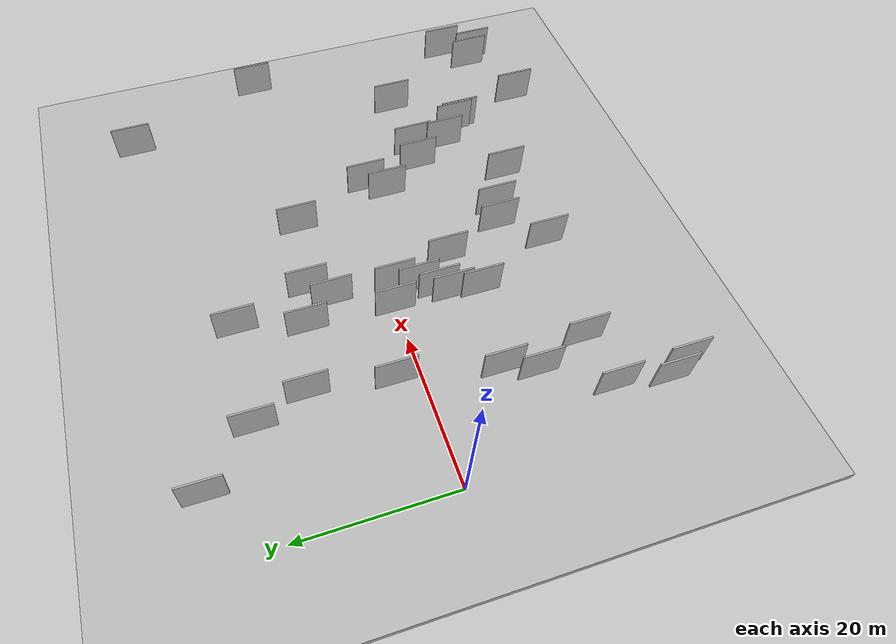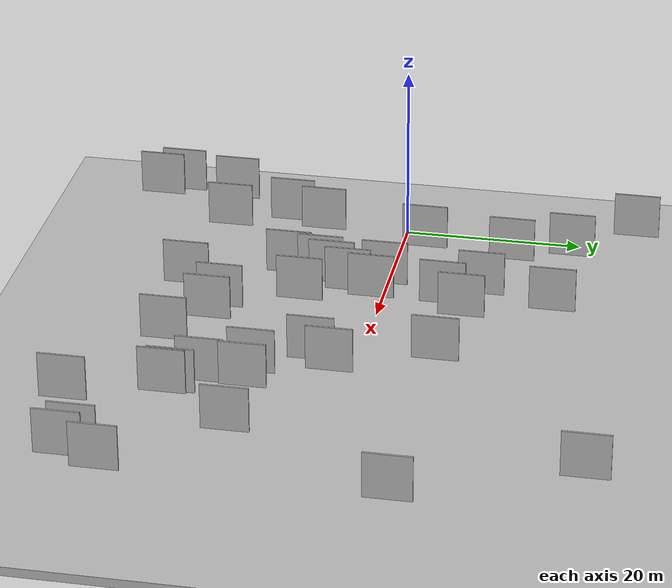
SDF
<?xml version="1.0" encoding="utf-8"?>

<sdf version="1.6">

   <world name="default">

      <gui fullscreen="0">

         <camera name="user_camera">

            <pose>-15 0 4.57585 0 0 0</pose>

            <view_controller>orbit</view_controller>

         </camera>

      </gui>

      <scene>

         <sky>

           <clouds>

             <speed>12</speed>

           </clouds>

         </sky>

         <ambient>0.4 0.4 0.4 1</ambient>

         <background>0.7 0.7 0.7 1</background>

         <shadows>1</shadows>

      </scene>

      <gravity>0 0 -9.8066</gravity>

      <magnetic_field>6e-06 2.3e-05 -4.2e-05</magnetic_field>

      <physics default="0" name="default_physics" type="ode">

         <ode>

            <solver>

               <type>quick</type>

               <iters>10</iters>

               <sor>1.0</sor>

               <use_dynamic_moi_rescaling>0</use_dynamic_moi_rescaling>

            </solver>

            <constraints>

               <cfm>0</cfm>

               <erp>0.2</erp>

               <contact_max_correcting_vel>100</contact_max_correcting_vel>

               <contact_surface_layer>0.001</contact_surface_layer>

            </constraints>

         </ode>

         <max_step_size>0.004</max_step_size>

         <real_time_factor>1</real_time_factor>

         <real_time_update_rate>250</real_time_update_rate>

      </physics>

      <light name="sun" type="directional">

         <cast_shadows>1</cast_shadows>

         <pose>0 0 10 0 0 0</pose>

         <diffuse>0.8 0.8 0.8 1</diffuse>

         <specular>0.2 0.2 0.2 1</specular>

         <attenuation>

            <range>1000</range>

            <constant>0.9</constant>

            <linear>0.01</linear>

            <quadratic>0.001</quadratic>

         </attenuation>

         <direction>-0.5 0.1 -0.9</direction>

      </light>

      <include>

         <name>ground_plane_1</name>

         <uri>model://HANNAS_ground_plane</uri>

         <pose>0 0 0  0 0 0</pose>

      </include>

      <include>

         <name>ground_plane_2</name>

         <uri>model://HANNAS_ground_plane</uri>

         <pose>100 0 0  0 0 0</pose>

      </include>

      <model name="HANNAS_wall_1">

         <static>1</static>

         <pose frame="">45.8689 -9.1494 5.0 0.000000 0.000000 1.570796</pose>

         <link name="link">

            <pose frame="">0 0 2.50 0 0 0</pose>

            <collision name="collision">

               <geometry>

                  <box>

                     <size>5.00 0.2 5.00</size>

                  </box>

               </geometry>

               <max_contacts>10</max_contacts>

               <surface>

                  <contact>

                     <ode/>

                  </contact>

                  <bounce/>

                  <friction>

                     <torsional>

                        <ode/>

                     </torsional>

                     <ode/>

                  </friction>

               </surface>

            </collision>

            <visual name="visual">

               <cast_shadows>0</cast_shadows>

               <geometry>

                  <box>

                     <size>5.00 0.2 5.00</size>

                  </box>

               </geometry>

               <material>

                  <script>

                     <uri>model://HANNAS_wall/materials/scripts</uri>

                     <uri>model://HANNAS_wall/materials/textures</uri>

                     <name>vrc/HANNAS_wall</name>

                  </script>

               </material>

            </visual>

            <self_collide>0</self_collide>

            <enable_wind>0</enable_wind>

            <kinematic>0</kinematic>

         </link>

      </model>

      <model name="HANNAS_wall_2">

         <static>1</static>

         <pose frame="">24.1546 19.8000 5.0 0.000000 0.000000 1.570796</pose>

         <link name="link">

            <pose frame="">0 0 2.50 0 0 0</pose>

            <collision name="collision">

               <geometry>

                  <box>

                     <size>5.00 0.2 5.00</size>

                  </box>

               </geometry>

               <max_contacts>10</max_contacts>

               <surface>

                  <contact>

                     <ode/>

                  </contact>

                  <bounce/>

                  <friction>

                     <torsional>

                        <ode/>

                     </torsional>

                     <ode/>

                  </friction>

               </surface>

            </collision>

            <visual name="visual">

               <cast_shadows>0</cast_shadows>

               <geometry>

                  <box>

                     <size>5.00 0.2 5.00</size>

                  </box>

               </geometry>

               <material>

                  <script>

                     <uri>model://HANNAS_wall/materials/scripts</uri>

                     <uri>model://HANNAS_wall/materials/textures</uri>

                     <name>vrc/HANNAS_wall</name>

                  </script>

               </material>

            </visual>

            <self_collide>0</self_collide>

            <enable_wind>0</enable_wind>

            <kinematic>0</kinematic>

         </link>

      </model>

      <model name="HANNAS_wall_3">

         <static>1</static>

         <pose frame="">41.1265 -1.0833 5.0 0.000000 0.000000 1.570796</pose>

         <link name="link">

            <pose frame="">0 0 2.50 0 0 0</pose>

            <collision name="collision">

               <geometry>

                  <box>

                     <size>5.00 0.2 5.00</size>

                  </box>

               </geometry>

               <max_contacts>10</max_contacts>

               <surface>

                  <contact>

                     <ode/>

                  </contact>

                  <bounce/>

                  <friction>

                     <torsional>

                        <ode/>

                     </torsional>

                     <ode/>

                  </friction>

               </surface>

            </collision>

            <visual name="visual">

               <cast_shadows>0</cast_shadows>

               <geometry>

                  <box>

                     <size>5.00 0.2 5.00</size>

                  </box>

               </geometry>

               <material>

                  <script>

                     <uri>model://HANNAS_wall/materials/scripts</uri>

                     <uri>model://HANNAS_wall/materials/textures</uri>

                     <name>vrc/HANNAS_wall</name>

                  </script>

               </material>

            </visual>

            <self_collide>0</self_collide>

            <enable_wind>0</enable_wind>

            <kinematic>0</kinematic>

         </link>

      </model>

      <model name="HANNAS_wall_4">

         <static>1</static>

         <pose frame="">45.6320 -13.7155 5.0 0.000000 0.000000 1.570796</pose>

         <link name="link">

            <pose frame="">0 0 2.50 0 0 0</pose>

            <collision name="collision">

               <geometry>

                  <box>

                     <size>5.00 0.2 5.00</size>

                  </box>

               </geometry>

               <max_contacts>10</max_contacts>

               <surface>

                  <contact>

                     <ode/>

                  </contact>

                  <bounce/>

                  <friction>

                     <torsional>

                        <ode/>

                     </torsional>

                     <ode/>

                  </friction>

               </surface>

            </collision>

            <visual name="visual">

               <cast_shadows>0</cast_shadows>

               <geometry>

                  <box>

                     <size>5.00 0.2 5.00</size>

                  </box>

               </geometry>

               <material>

                  <script>

                     <uri>model://HANNAS_wall/materials/scripts</uri>

                     <uri>model://HANNAS_wall/materials/textures</uri>

                     <name>vrc/HANNAS_wall</name>

                  </script>

               </material>

            </visual>

            <self_collide>0</self_collide>

            <enable_wind>0</enable_wind>

            <kinematic>0</kinematic>

         </link>

      </model>

      <model name="HANNAS_wall_5">

         <static>1</static>

         <pose frame="">9.9826 -7.8186 5.0 0.000000 0.000000 1.570796</pose>

         <link name="link">

            <pose frame="">0 0 2.50 0 0 0</pose>

            <collision name="collision">

               <geometry>

                  <box>

                     <size>5.00 0.2 5.00</size>

                  </box>

               </geometry>

               <max_contacts>10</max_contacts>

               <surface>

                  <contact>

                     <ode/>

                  </contact>

                  <bounce/>

                  <friction>

                     <torsional>

                        <ode/>

                     </torsional>

                     <ode/>

                  </friction>

               </surface>

            </collision>

            <visual name="visual">

               <cast_shadows>0</cast_shadows>

               <geometry>

                  <box>

                     <size>5.00 0.2 5.00</size>

                  </box>

               </geometry>

               <material>

                  <script>

                     <uri>model://HANNAS_wall/materials/scripts</uri>

                     <uri>model://HANNAS_wall/materials/textures</uri>

                     <name>vrc/HANNAS_wall</name>

                  </script>

               </material>

            </visual>

            <self_collide>0</self_collide>

            <enable_wind>0</enable_wind>

            <kinematic>0</kinematic>

         </link>

      </model>

      <model name="HANNAS_wall_6">

         <static>1</static>

         <pose frame="">37.7334 -19.4308 5.0 0.000000 0.000000 1.570796</pose>

         <link name="link">

            <pose frame="">0 0 2.50 0 0 0</pose>

            <collision name="collision">

               <geometry>

                  <box>

                     <size>5.00 0.2 5.00</size>

                  </box>

               </geometry>

               <max_contacts>10</max_contacts>

               <surface>

                  <contact>

                     <ode/>

                  </contact>

                  <bounce/>

                  <friction>

                     <torsional>

                        <ode/>

                     </torsional>

                     <ode/>

                  </friction>

               </surface>

            </collision>

            <visual name="visual">

               <cast_shadows>0</cast_shadows>

               <geometry>

                  <box>

                     <size>5.00 0.2 5.00</size>

                  </box>

               </geometry>

               <material>

                  <script>

                     <uri>model://HANNAS_wall/materials/scripts</uri>

                     <uri>model://HANNAS_wall/materials/textures</uri>

                     <name>vrc/HANNAS_wall</name>

                  </script>

               </material>

            </visual>

            <self_collide>0</self_collide>

            <enable_wind>0</enable_wind>

            <kinematic>0</kinematic>

         </link>

      </model>

      <model name="HANNAS_wall_7">

         <static>1</static>

         <pose frame="">11.3597 20.3372 5.0 0.000000 0.000000 1.570796</pose>

         <link name="link">

            <pose frame="">0 0 2.50 0 0 0</pose>

            <collision name="collision">

               <geometry>

                  <box>

                     <size>5.00 0.2 5.00</size>

                  </box>

               </geometry>

               <max_contacts>10</max_contacts>

               <surface>

                  <contact>

                     <ode/>

                  </contact>

                  <bounce/>

                  <friction>

                     <torsional>

                        <ode/>

                     </torsional>

                     <ode/>

                  </friction>

               </surface>

            </collision>

            <visual name="visual">

               <cast_shadows>0</cast_shadows>

               <geometry>

                  <box>

                     <size>5.00 0.2 5.00</size>

                  </box>

               </geometry>

               <material>

                  <script>

                     <uri>model://HANNAS_wall/materials/scripts</uri>

                     <uri>model://HANNAS_wall/materials/textures</uri>

                     <name>vrc/HANNAS_wall</name>

                  </script>

               </material>

            </visual>

            <self_collide>0</self_collide>

            <enable_wind>0</enable_wind>

            <kinematic>0</kinematic>

         </link>

      </model>

      <model name="HANNAS_wall_8">

         <static>1</static>

         <pose frame="">20.9005 -9.5309 5.0 0.000000 0.000000 1.570796</pose>

         <link name="link">

            <pose frame="">0 0 2.50 0 0 0</pose>

            <collision name="collision">

               <geometry>

                  <box>

                     <size>5.00 0.2 5.00</size>

                  </box>

               </geometry>

               <max_contacts>10</max_contacts>

               <surface>

                  <contact>

                     <ode/>

                  </contact>

                  <bounce/>

                  <friction>

                     <torsional>

                        <ode/>

                     </torsional>

                     <ode/>

                  </friction>

               </surface>

            </collision>

            <visual name="visual">

               <cast_shadows>0</cast_shadows>

               <geometry>

                  <box>

                     <size>5.00 0.2 5.00</size>

                  </box>

               </geometry>

               <material>

                  <script>

                     <uri>model://HANNAS_wall/materials/scripts</uri>

                     <uri>model://HANNAS_wall/materials/textures</uri>

                     <name>vrc/HANNAS_wall</name>

                  </script>

               </material>

            </visual>

            <self_collide>0</self_collide>

            <enable_wind>0</enable_wind>

            <kinematic>0</kinematic>

         </link>

      </model>

      <model name="HANNAS_wall_9">

         <static>1</static>

         <pose frame="">21.9039 11.8177 5.0 0.000000 0.000000 1.570796</pose>

         <link name="link">

            <pose frame="">0 0 2.50 0 0 0</pose>

            <collision name="collision">

               <geometry>

                  <box>

                     <size>5.00 0.2 5.00</size>

                  </box>

               </geometry>

               <max_contacts>10</max_contacts>

               <surface>

                  <contact>

                     <ode/>

                  </contact>

                  <bounce/>

                  <friction>

                     <torsional>

                        <ode/>

                     </torsional>

                     <ode/>

                  </friction>

               </surface>

            </collision>

            <visual name="visual">

               <cast_shadows>0</cast_shadows>

               <geometry>

                  <box>

                     <size>5.00 0.2 5.00</size>

                  </box>

               </geometry>

               <material>

                  <script>

                     <uri>model://HANNAS_wall/materials/scripts</uri>

                     <uri>model://HANNAS_wall/materials/textures</uri>

                     <name>vrc/HANNAS_wall</name>

                  </script>

               </material>

            </visual>

            <self_collide>0</self_collide>

            <enable_wind>0</enable_wind>

            <kinematic>0</kinematic>

         </link>

      </model>

      <model name="HANNAS_wall_10">

         <static>1</static>

         <pose frame="">4.6481 -27.6970 5.0 0.000000 0.000000 1.570796</pose>

         <link name="link">

            <pose frame="">0 0 2.50 0 0 0</pose>

            <collision name="collision">

               <geometry>

                  <box>

                     <size>5.00 0.2 5.00</size>

                  </box>

               </geometry>

               <max_contacts>10</max_contacts>

               <surface>

                  <contact>

                     <ode/>

                  </contact>

                  <bounce/>

                  <friction>

                     <torsional>

                        <ode/>

                     </torsional>

                     <ode/>

                  </friction>

               </surface>

            </collision>

            <visual name="visual">

               <cast_shadows>0</cast_shadows>

               <geometry>

                  <box>

                     <size>5.00 0.2 5.00</size>

                  </box>

               </geometry>

               <material>

                  <script>

                     <uri>model://HANNAS_wall/materials/scripts</uri>

                     <uri>model://HANNAS_wall/materials/textures</uri>

                     <name>vrc/HANNAS_wall</name>

                  </script>

               </material>

            </visual>

            <self_collide>0</self_collide>

            <enable_wind>0</enable_wind>

            <kinematic>0</kinematic>

         </link>

      </model>

      <model name="HANNAS_wall_11">

         <static>1</static>

         <pose frame="">8.5023 -11.6811 5.0 0.000000 0.000000 1.570796</pose>

         <link name="link">

            <pose frame="">0 0 2.50 0 0 0</pose>

            <collision name="collision">

               <geometry>

                  <box>

                     <size>5.00 0.2 5.00</size>

                  </box>

               </geometry>

               <max_contacts>10</max_contacts>

               <surface>

                  <contact>

                     <ode/>

                  </contact>

                  <bounce/>

                  <friction>

                     <torsional>

                        <ode/>

                     </torsional>

                     <ode/>

                  </friction>

               </surface>

            </collision>

            <visual name="visual">

               <cast_shadows>0</cast_shadows>

               <geometry>

                  <box>

                     <size>5.00 0.2 5.00</size>

                  </box>

               </geometry>

               <material>

                  <script>

                     <uri>model://HANNAS_wall/materials/scripts</uri>

                     <uri>model://HANNAS_wall/materials/textures</uri>

                     <name>vrc/HANNAS_wall</name>

                  </script>

               </material>

            </visual>

            <self_collide>0</self_collide>

            <enable_wind>0</enable_wind>

            <kinematic>0</kinematic>

         </link>

      </model>

      <model name="HANNAS_wall_12">

         <static>1</static>

         <pose frame="">60.6085 -23.0088 5.0 0.000000 0.000000 1.570796</pose>

         <link name="link">

            <pose frame="">0 0 2.50 0 0 0</pose>

            <collision name="collision">

               <geometry>

                  <box>

                     <size>5.00 0.2 5.00</size>

                  </box>

               </geometry>

               <max_contacts>10</max_contacts>

               <surface>

                  <contact>

                     <ode/>

                  </contact>

                  <bounce/>

                  <friction>

                     <torsional>

                        <ode/>

                     </torsional>

                     <ode/>

                  </friction>

               </surface>

            </collision>

            <visual name="visual">

               <cast_shadows>0</cast_shadows>

               <geometry>

                  <box>

                     <size>5.00 0.2 5.00</size>

                  </box>

               </geometry>

               <material>

                  <script>

                     <uri>model://HANNAS_wall/materials/scripts</uri>

                     <uri>model://HANNAS_wall/materials/textures</uri>

                     <name>vrc/HANNAS_wall</name>

                  </script>

               </material>

            </visual>

            <self_collide>0</self_collide>

            <enable_wind>0</enable_wind>

            <kinematic>0</kinematic>

         </link>

      </model>

      <model name="HANNAS_wall_13">

         <static>1</static>

         <pose frame="">63.9735 -19.9130 5.0 0.000000 0.000000 1.570796</pose>

         <link name="link">

            <pose frame="">0 0 2.50 0 0 0</pose>

            <collision name="collision">

               <geometry>

                  <box>

                     <size>5.00 0.2 5.00</size>

                  </box>

               </geometry>

               <max_contacts>10</max_contacts>

               <surface>

                  <contact>

                     <ode/>

                  </contact>

                  <bounce/>

                  <friction>

                     <torsional>

                        <ode/>

                     </torsional>

                     <ode/>

                  </friction>

               </surface>

            </collision>

            <visual name="visual">

               <cast_shadows>0</cast_shadows>

               <geometry>

                  <box>

                     <size>5.00 0.2 5.00</size>

                  </box>

               </geometry>

               <material>

                  <script>

                     <uri>model://HANNAS_wall/materials/scripts</uri>

                     <uri>model://HANNAS_wall/materials/textures</uri>

                     <name>vrc/HANNAS_wall</name>

                  </script>

               </material>

            </visual>

            <self_collide>0</self_collide>

            <enable_wind>0</enable_wind>

            <kinematic>0</kinematic>

         </link>

      </model>

      <model name="HANNAS_wall_14">

         <static>1</static>

         <pose frame="">48.2057 -16.0834 5.0 0.000000 0.000000 1.570796</pose>

         <link name="link">

            <pose frame="">0 0 2.50 0 0 0</pose>

            <collision name="collision">

               <geometry>

                  <box>

                     <size>5.00 0.2 5.00</size>

                  </box>

               </geometry>

               <max_contacts>10</max_contacts>

               <surface>

                  <contact>

                     <ode/>

                  </contact>

                  <bounce/>

                  <friction>

                     <torsional>

                        <ode/>

                     </torsional>

                     <ode/>

                  </friction>

               </surface>

            </collision>

            <visual name="visual">

               <cast_shadows>0</cast_shadows>

               <geometry>

                  <box>

                     <size>5.00 0.2 5.00</size>

                  </box>

               </geometry>

               <material>

                  <script>

                     <uri>model://HANNAS_wall/materials/scripts</uri>

                     <uri>model://HANNAS_wall/materials/textures</uri>

                     <name>vrc/HANNAS_wall</name>

                  </script>

               </material>

            </visual>

            <self_collide>0</self_collide>

            <enable_wind>0</enable_wind>

            <kinematic>0</kinematic>

         </link>

      </model>

      <model name="HANNAS_wall_15">

         <static>1</static>

         <pose frame="">24.7126 0.2399 5.0 0.000000 0.000000 1.570796</pose>

         <link name="link">

            <pose frame="">0 0 2.50 0 0 0</pose>

            <collision name="collision">

               <geometry>

                  <box>

                     <size>5.00 0.2 5.00</size>

                  </box>

               </geometry>

               <max_contacts>10</max_contacts>

               <surface>

                  <contact>

                     <ode/>

                  </contact>

                  <bounce/>

                  <friction>

                     <torsional>

                        <ode/>

                     </torsional>

                     <ode/>

                  </friction>

               </surface>

            </collision>

            <visual name="visual">

               <cast_shadows>0</cast_shadows>

               <geometry>

                  <box>

                     <size>5.00 0.2 5.00</size>

                  </box>

               </geometry>

               <material>

                  <script>

                     <uri>model://HANNAS_wall/materials/scripts</uri>

                     <uri>model://HANNAS_wall/materials/textures</uri>

                     <name>vrc/HANNAS_wall</name>

                  </script>

               </material>

            </visual>

            <self_collide>0</self_collide>

            <enable_wind>0</enable_wind>

            <kinematic>0</kinematic>

         </link>

      </model>

      <model name="HANNAS_wall_16">

         <static>1</static>

         <pose frame="">3.2623 -25.4595 5.0 0.000000 0.000000 1.570796</pose>

         <link name="link">

            <pose frame="">0 0 2.50 0 0 0</pose>

            <collision name="collision">

               <geometry>

                  <box>

                     <size>5.00 0.2 5.00</size>

                  </box>

               </geometry>

               <max_contacts>10</max_contacts>

               <surface>

                  <contact>

                     <ode/>

                  </contact>

                  <bounce/>

                  <friction>

                     <torsional>

                        <ode/>

                     </torsional>

                     <ode/>

                  </friction>

               </surface>

            </collision>

            <visual name="visual">

               <cast_shadows>0</cast_shadows>

               <geometry>

                  <box>

                     <size>5.00 0.2 5.00</size>

                  </box>

               </geometry>

               <material>

                  <script>

                     <uri>model://HANNAS_wall/materials/scripts</uri>

                     <uri>model://HANNAS_wall/materials/textures</uri>

                     <name>vrc/HANNAS_wall</name>

                  </script>

               </material>

            </visual>

            <self_collide>0</self_collide>

            <enable_wind>0</enable_wind>

            <kinematic>0</kinematic>

         </link>

      </model>

      <model name="HANNAS_wall_17">

         <static>1</static>

         <pose frame="">62.1523 -24.0987 5.0 0.000000 0.000000 1.570796</pose>

         <link name="link">

            <pose frame="">0 0 2.50 0 0 0</pose>

            <collision name="collision">

               <geometry>

                  <box>

                     <size>5.00 0.2 5.00</size>

                  </box>

               </geometry>

               <max_contacts>10</max_contacts>

               <surface>

                  <contact>

                     <ode/>

                  </contact>

                  <bounce/>

                  <friction>

                     <torsional>

                        <ode/>

                     </torsional>

                     <ode/>

                  </friction>

               </surface>

            </collision>

            <visual name="visual">

               <cast_shadows>0</cast_shadows>

               <geometry>

                  <box>

                     <size>5.00 0.2 5.00</size>

                  </box>

               </geometry>

               <material>

                  <script>

                     <uri>model://HANNAS_wall/materials/scripts</uri>

                     <uri>model://HANNAS_wall/materials/textures</uri>

                     <name>vrc/HANNAS_wall</name>

                  </script>

               </material>

            </visual>

            <self_collide>0</self_collide>

            <enable_wind>0</enable_wind>

            <kinematic>0</kinematic>

         </link>

      </model>

      <model name="HANNAS_wall_18">

         <static>1</static>

         <pose frame="">42.8389 -8.9228 5.0 0.000000 0.000000 1.570796</pose>

         <link name="link">

            <pose frame="">0 0 2.50 0 0 0</pose>

            <collision name="collision">

               <geometry>

                  <box>

                     <size>5.00 0.2 5.00</size>

                  </box>

               </geometry>

               <max_contacts>10</max_contacts>

               <surface>

                  <contact>

                     <ode/>

                  </contact>

                  <bounce/>

                  <friction>

                     <torsional>

                        <ode/>

                     </torsional>

                     <ode/>

                  </friction>

               </surface>

            </collision>

            <visual name="visual">

               <cast_shadows>0</cast_shadows>

               <geometry>

                  <box>

                     <size>5.00 0.2 5.00</size>

                  </box>

               </geometry>

               <material>

                  <script>

                     <uri>model://HANNAS_wall/materials/scripts</uri>

                     <uri>model://HANNAS_wall/materials/textures</uri>

                     <name>vrc/HANNAS_wall</name>

                  </script>

               </material>

            </visual>

            <self_collide>0</self_collide>

            <enable_wind>0</enable_wind>

            <kinematic>0</kinematic>

         </link>

      </model>

      <model name="HANNAS_wall_19">

         <static>1</static>

         <pose frame="">64.2419 9.1794 5.0 0.000000 0.000000 1.570796</pose>

         <link name="link">

            <pose frame="">0 0 2.50 0 0 0</pose>

            <collision name="collision">

               <geometry>

                  <box>

                     <size>5.00 0.2 5.00</size>

                  </box>

               </geometry>

               <max_contacts>10</max_contacts>

               <surface>

                  <contact>

                     <ode/>

                  </contact>

                  <bounce/>

                  <friction>

                     <torsional>

                        <ode/>

                     </torsional>

                     <ode/>

                  </friction>

               </surface>

            </collision>

            <visual name="visual">

               <cast_shadows>0</cast_shadows>

               <geometry>

                  <box>

                     <size>5.00 0.2 5.00</size>

                  </box>

               </geometry>

               <material>

                  <script>

                     <uri>model://HANNAS_wall/materials/scripts</uri>

                     <uri>model://HANNAS_wall/materials/textures</uri>

                     <name>vrc/HANNAS_wall</name>

                  </script>

               </material>

            </visual>

            <self_collide>0</self_collide>

            <enable_wind>0</enable_wind>

            <kinematic>0</kinematic>

         </link>

      </model>

      <model name="HANNAS_wall_20">

         <static>1</static>

         <pose frame="">21.3198 -5.9582 5.0 0.000000 0.000000 1.570796</pose>

         <link name="link">

            <pose frame="">0 0 2.50 0 0 0</pose>

            <collision name="collision">

               <geometry>

                  <box>

                     <size>5.00 0.2 5.00</size>

                  </box>

               </geometry>

               <max_contacts>10</max_contacts>

               <surface>

                  <contact>

                     <ode/>

                  </contact>

                  <bounce/>

                  <friction>

                     <torsional>

                        <ode/>

                     </torsional>

                     <ode/>

                  </friction>

               </surface>

            </collision>

            <visual name="visual">

               <cast_shadows>0</cast_shadows>

               <geometry>

                  <box>

                     <size>5.00 0.2 5.00</size>

                  </box>

               </geometry>

               <material>

                  <script>

                     <uri>model://HANNAS_wall/materials/scripts</uri>

                     <uri>model://HANNAS_wall/materials/textures</uri>

                     <name>vrc/HANNAS_wall</name>

                  </script>

               </material>

            </visual>

            <self_collide>0</self_collide>

            <enable_wind>0</enable_wind>

            <kinematic>0</kinematic>

         </link>

      </model>

      <model name="HANNAS_wall_21">

         <static>1</static>

         <pose frame="">13.5142 13.9299 5.0 0.000000 0.000000 1.570796</pose>

         <link name="link">

            <pose frame="">0 0 2.50 0 0 0</pose>

            <collision name="collision">

               <geometry>

                  <box>

                     <size>5.00 0.2 5.00</size>

                  </box>

               </geometry>

               <max_contacts>10</max_contacts>

               <surface>

                  <contact>

                     <ode/>

                  </contact>

                  <bounce/>

                  <friction>

                     <torsional>

                        <ode/>

                     </torsional>

                     <ode/>

                  </friction>

               </surface>

            </collision>

            <visual name="visual">

               <cast_shadows>0</cast_shadows>

               <geometry>

                  <box>

                     <size>5.00 0.2 5.00</size>

                  </box>

               </geometry>

               <material>

                  <script>

                     <uri>model://HANNAS_wall/materials/scripts</uri>

                     <uri>model://HANNAS_wall/materials/textures</uri>

                     <name>vrc/HANNAS_wall</name>

                  </script>

               </material>

            </visual>

            <self_collide>0</self_collide>

            <enable_wind>0</enable_wind>

            <kinematic>0</kinematic>

         </link>

      </model>

      <model name="HANNAS_wall_22">

         <static>1</static>

         <pose frame="">5.4197 26.8674 5.0 0.000000 0.000000 1.570796</pose>

         <link name="link">

            <pose frame="">0 0 2.50 0 0 0</pose>

            <collision name="collision">

               <geometry>

                  <box>

                     <size>5.00 0.2 5.00</size>

                  </box>

               </geometry>

               <max_contacts>10</max_contacts>

               <surface>

                  <contact>

                     <ode/>

                  </contact>

                  <bounce/>

                  <friction>

                     <torsional>

                        <ode/>

                     </torsional>

                     <ode/>

                  </friction>

               </surface>

            </collision>

            <visual name="visual">

               <cast_shadows>0</cast_shadows>

               <geometry>

                  <box>

                     <size>5.00 0.2 5.00</size>

                  </box>

               </geometry>

               <material>

                  <script>

                     <uri>model://HANNAS_wall/materials/scripts</uri>

                     <uri>model://HANNAS_wall/materials/textures</uri>

                     <name>vrc/HANNAS_wall</name>

                  </script>

               </material>

            </visual>

            <self_collide>0</self_collide>

            <enable_wind>0</enable_wind>

            <kinematic>0</kinematic>

         </link>

      </model>

      <model name="HANNAS_wall_23">

         <static>1</static>

         <pose frame="">36.8729 9.2549 5.0 0.000000 0.000000 1.570796</pose>

         <link name="link">

            <pose frame="">0 0 2.50 0 0 0</pose>

            <collision name="collision">

               <geometry>

                  <box>

                     <size>5.00 0.2 5.00</size>

                  </box>

               </geometry>

               <max_contacts>10</max_contacts>

               <surface>

                  <contact>

                     <ode/>

                  </contact>

                  <bounce/>

                  <friction>

                     <torsional>

                        <ode/>

                     </torsional>

                     <ode/>

                  </friction>

               </surface>

            </collision>

            <visual name="visual">

               <cast_shadows>0</cast_shadows>

               <geometry>

                  <box>

                     <size>5.00 0.2 5.00</size>

                  </box>

               </geometry>

               <material>

                  <script>

                     <uri>model://HANNAS_wall/materials/scripts</uri>

                     <uri>model://HANNAS_wall/materials/textures</uri>

                     <name>vrc/HANNAS_wall</name>

                  </script>

               </material>

            </visual>

            <self_collide>0</self_collide>

            <enable_wind>0</enable_wind>

            <kinematic>0</kinematic>

         </link>

      </model>

      <model name="HANNAS_wall_24">

         <static>1</static>

         <pose frame="">39.2091 -3.4081 5.0 0.000000 0.000000 1.570796</pose>

         <link name="link">

            <pose frame="">0 0 2.50 0 0 0</pose>

            <collision name="collision">

               <geometry>

                  <box>

                     <size>5.00 0.2 5.00</size>

                  </box>

               </geometry>

               <max_contacts>10</max_contacts>

               <surface>

                  <contact>

                     <ode/>

                  </contact>

                  <bounce/>

                  <friction>

                     <torsional>

                        <ode/>

                     </torsional>

                     <ode/>

                  </friction>

               </surface>

            </collision>

            <visual name="visual">

               <cast_shadows>0</cast_shadows>

               <geometry>

                  <box>

                     <size>5.00 0.2 5.00</size>

                  </box>

               </geometry>

               <material>

                  <script>

                     <uri>model://HANNAS_wall/materials/scripts</uri>

                     <uri>model://HANNAS_wall/materials/textures</uri>

                     <name>vrc/HANNAS_wall</name>

                  </script>

               </material>

            </visual>

            <self_collide>0</self_collide>

            <enable_wind>0</enable_wind>

            <kinematic>0</kinematic>

         </link>

      </model>

      <model name="HANNAS_wall_25">

         <static>1</static>

         <pose frame="">29.7057 -15.2595 5.0 0.000000 0.000000 1.570796</pose>

         <link name="link">

            <pose frame="">0 0 2.50 0 0 0</pose>

            <collision name="collision">

               <geometry>

                  <box>

                     <size>5.00 0.2 5.00</size>

                  </box>

               </geometry>

               <max_contacts>10</max_contacts>

               <surface>

                  <contact>

                     <ode/>

                  </contact>

                  <bounce/>

                  <friction>

                     <torsional>

                        <ode/>

                     </torsional>

                     <ode/>

                  </friction>

               </surface>

            </collision>

            <visual name="visual">

               <cast_shadows>0</cast_shadows>

               <geometry>

                  <box>

                     <size>5.00 0.2 5.00</size>

                  </box>

               </geometry>

               <material>

                  <script>

                     <uri>model://HANNAS_wall/materials/scripts</uri>

                     <uri>model://HANNAS_wall/materials/textures</uri>

                     <name>vrc/HANNAS_wall</name>

                  </script>

               </material>

            </visual>

            <self_collide>0</self_collide>

            <enable_wind>0</enable_wind>

            <kinematic>0</kinematic>

         </link>

      </model>

      <model name="HANNAS_wall_26">

         <static>1</static>

         <pose frame="">24.7519 8.0523 5.0 0.000000 0.000000 1.570796</pose>

         <link name="link">

            <pose frame="">0 0 2.50 0 0 0</pose>

            <collision name="collision">

               <geometry>

                  <box>

                     <size>5.00 0.2 5.00</size>

                  </box>

               </geometry>

               <max_contacts>10</max_contacts>

               <surface>

                  <contact>

                     <ode/>

                  </contact>

                  <bounce/>

                  <friction>

                     <torsional>

                        <ode/>

                     </torsional>

                     <ode/>

                  </friction>

               </surface>

            </collision>

            <visual name="visual">

               <cast_shadows>0</cast_shadows>

               <geometry>

                  <box>

                     <size>5.00 0.2 5.00</size>

                  </box>

               </geometry>

               <material>

                  <script>

                     <uri>model://HANNAS_wall/materials/scripts</uri>

                     <uri>model://HANNAS_wall/materials/textures</uri>

                     <name>vrc/HANNAS_wall</name>

                  </script>

               </material>

            </visual>

            <self_collide>0</self_collide>

            <enable_wind>0</enable_wind>

            <kinematic>0</kinematic>

         </link>

      </model>

      <model name="HANNAS_wall_27">

         <static>1</static>

         <pose frame="">51.5955 -26.5343 5.0 0.000000 0.000000 1.570796</pose>

         <link name="link">

            <pose frame="">0 0 2.50 0 0 0</pose>

            <collision name="collision">

               <geometry>

                  <box>

                     <size>5.00 0.2 5.00</size>

                  </box>

               </geometry>

               <max_contacts>10</max_contacts>

               <surface>

                  <contact>

                     <ode/>

                  </contact>

                  <bounce/>

                  <friction>

                     <torsional>

                        <ode/>

                     </torsional>

                     <ode/>

                  </friction>

               </surface>

            </collision>

            <visual name="visual">

               <cast_shadows>0</cast_shadows>

               <geometry>

                  <box>

                     <size>5.00 0.2 5.00</size>

                  </box>

               </geometry>

               <material>

                  <script>

                     <uri>model://HANNAS_wall/materials/scripts</uri>

                     <uri>model://HANNAS_wall/materials/textures</uri>

                     <name>vrc/HANNAS_wall</name>

                  </script>

               </material>

            </visual>

            <self_collide>0</self_collide>

            <enable_wind>0</enable_wind>

            <kinematic>0</kinematic>

         </link>

      </model>

      <model name="HANNAS_wall_28">

         <static>1</static>

         <pose frame="">26.6481 -7.2028 5.0 0.000000 0.000000 1.570796</pose>

         <link name="link">

            <pose frame="">0 0 2.50 0 0 0</pose>

            <collision name="collision">

               <geometry>

                  <box>

                     <size>5.00 0.2 5.00</size>

                  </box>

               </geometry>

               <max_contacts>10</max_contacts>

               <surface>

                  <contact>

                     <ode/>

                  </contact>

                  <bounce/>

                  <friction>

                     <torsional>

                        <ode/>

                     </torsional>

                     <ode/>

                  </friction>

               </surface>

            </collision>

            <visual name="visual">

               <cast_shadows>0</cast_shadows>

               <geometry>

                  <box>

                     <size>5.00 0.2 5.00</size>

                  </box>

               </geometry>

               <material>

                  <script>

                     <uri>model://HANNAS_wall/materials/scripts</uri>

                     <uri>model://HANNAS_wall/materials/textures</uri>

                     <name>vrc/HANNAS_wall</name>

                  </script>

               </material>

            </visual>

            <self_collide>0</self_collide>

            <enable_wind>0</enable_wind>

            <kinematic>0</kinematic>

         </link>

      </model>

      <model name="HANNAS_wall_29">

         <static>1</static>

         <pose frame="">10.9245 -18.3302 5.0 0.000000 0.000000 1.570796</pose>

         <link name="link">

            <pose frame="">0 0 2.50 0 0 0</pose>

            <collision name="collision">

               <geometry>

                  <box>

                     <size>5.00 0.2 5.00</size>

                  </box>

               </geometry>

               <max_contacts>10</max_contacts>

               <surface>

                  <contact>

                     <ode/>

                  </contact>

                  <bounce/>

                  <friction>

                     <torsional>

                        <ode/>

                     </torsional>

                     <ode/>

                  </friction>

               </surface>

            </collision>

            <visual name="visual">

               <cast_shadows>0</cast_shadows>

               <geometry>

                  <box>

                     <size>5.00 0.2 5.00</size>

                  </box>

               </geometry>

               <material>

                  <script>

                     <uri>model://HANNAS_wall/materials/scripts</uri>

                     <uri>model://HANNAS_wall/materials/textures</uri>

                     <name>vrc/HANNAS_wall</name>

                  </script>

               </material>

            </visual>

            <self_collide>0</self_collide>

            <enable_wind>0</enable_wind>

            <kinematic>0</kinematic>

         </link>

      </model>

      <model name="HANNAS_wall_30">

         <static>1</static>

         <pose frame="">32.4458 -15.9855 5.0 0.000000 0.000000 1.570796</pose>

         <link name="link">

            <pose frame="">0 0 2.50 0 0 0</pose>

            <collision name="collision">

               <geometry>

                  <box>

                     <size>5.00 0.2 5.00</size>

                  </box>

               </geometry>

               <max_contacts>10</max_contacts>

               <surface>

                  <contact>

                     <ode/>

                  </contact>

                  <bounce/>

                  <friction>

                     <torsional>

                        <ode/>

                     </torsional>

                     <ode/>

                  </friction>

               </surface>

            </collision>

            <visual name="visual">

               <cast_shadows>0</cast_shadows>

               <geometry>

                  <box>

                     <size>5.00 0.2 5.00</size>

                  </box>

               </geometry>

               <material>

                  <script>

                     <uri>model://HANNAS_wall/materials/scripts</uri>

                     <uri>model://HANNAS_wall/materials/textures</uri>

                     <name>vrc/HANNAS_wall</name>

                  </script>

               </material>

            </visual>

            <self_collide>0</self_collide>

            <enable_wind>0</enable_wind>

            <kinematic>0</kinematic>

         </link>

      </model>

      <model name="HANNAS_wall_31">

         <static>1</static>

         <pose frame="">27.1660 10.4456 5.0 0.000000 0.000000 1.570796</pose>

         <link name="link">

            <pose frame="">0 0 2.50 0 0 0</pose>

            <collision name="collision">

               <geometry>

                  <box>

                     <size>5.00 0.2 5.00</size>

                  </box>

               </geometry>

               <max_contacts>10</max_contacts>

               <surface>

                  <contact>

                     <ode/>

                  </contact>

                  <bounce/>

                  <friction>

                     <torsional>

                        <ode/>

                     </torsional>

                     <ode/>

                  </friction>

               </surface>

            </collision>

            <visual name="visual">

               <cast_shadows>0</cast_shadows>

               <geometry>

                  <box>

                     <size>5.00 0.2 5.00</size>

                  </box>

               </geometry>

               <material>

                  <script>

                     <uri>model://HANNAS_wall/materials/scripts</uri>

                     <uri>model://HANNAS_wall/materials/textures</uri>

                     <name>vrc/HANNAS_wall</name>

                  </script>

               </material>

            </visual>

            <self_collide>0</self_collide>

            <enable_wind>0</enable_wind>

            <kinematic>0</kinematic>

         </link>

      </model>

      <model name="HANNAS_wall_32">

         <static>1</static>

         <pose frame="">54.6617 -8.9798 5.0 0.000000 0.000000 1.570796</pose>

         <link name="link">

            <pose frame="">0 0 2.50 0 0 0</pose>

            <collision name="collision">

               <geometry>

                  <box>

                     <size>5.00 0.2 5.00</size>

                  </box>

               </geometry>

               <max_contacts>10</max_contacts>

               <surface>

                  <contact>

                     <ode/>

                  </contact>

                  <bounce/>

                  <friction>

                     <torsional>

                        <ode/>

                     </torsional>

                     <ode/>

                  </friction>

               </surface>

            </collision>

            <visual name="visual">

               <cast_shadows>0</cast_shadows>

               <geometry>

                  <box>

                     <size>5.00 0.2 5.00</size>

                  </box>

               </geometry>

               <material>

                  <script>

                     <uri>model://HANNAS_wall/materials/scripts</uri>

                     <uri>model://HANNAS_wall/materials/textures</uri>

                     <name>vrc/HANNAS_wall</name>

                  </script>

               </material>

            </visual>

            <self_collide>0</self_collide>

            <enable_wind>0</enable_wind>

            <kinematic>0</kinematic>

         </link>

      </model>

      <model name="HANNAS_wall_33">

         <static>1</static>

         <pose frame="">4.2129 -19.0343 5.0 0.000000 0.000000 1.570796</pose>

         <link name="link">

            <pose frame="">0 0 2.50 0 0 0</pose>

            <collision name="collision">

               <geometry>

                  <box>

                     <size>5.00 0.2 5.00</size>

                  </box>

               </geometry>

               <max_contacts>10</max_contacts>

               <surface>

                  <contact>

                     <ode/>

                  </contact>

                  <bounce/>

                  <friction>

                     <torsional>

                        <ode/>

                     </torsional>

                     <ode/>

                  </friction>

               </surface>

            </collision>

            <visual name="visual">

               <cast_shadows>0</cast_shadows>

               <geometry>

                  <box>

                     <size>5.00 0.2 5.00</size>

                  </box>

               </geometry>

               <material>

                  <script>

                     <uri>model://HANNAS_wall/materials/scripts</uri>

                     <uri>model://HANNAS_wall/materials/textures</uri>

                     <name>vrc/HANNAS_wall</name>

                  </script>

               </material>

            </visual>

            <self_collide>0</self_collide>

            <enable_wind>0</enable_wind>

            <kinematic>0</kinematic>

         </link>

      </model>

      <model name="HANNAS_wall_34">

         <static>1</static>

         <pose frame="">22.3543 -4.5211 5.0 0.000000 0.000000 1.570796</pose>

         <link name="link">

            <pose frame="">0 0 2.50 0 0 0</pose>

            <collision name="collision">

               <geometry>

                  <box>

                     <size>5.00 0.2 5.00</size>

                  </box>

               </geometry>

               <max_contacts>10</max_contacts>

               <surface>

                  <contact>

                     <ode/>

                  </contact>

                  <bounce/>

                  <friction>

                     <torsional>

                        <ode/>

                     </torsional>

                     <ode/>

                  </friction>

               </surface>

            </collision>

            <visual name="visual">

               <cast_shadows>0</cast_shadows>

               <geometry>

                  <box>

                     <size>5.00 0.2 5.00</size>

                  </box>

               </geometry>

               <material>

                  <script>

                     <uri>model://HANNAS_wall/materials/scripts</uri>

                     <uri>model://HANNAS_wall/materials/textures</uri>

                     <name>vrc/HANNAS_wall</name>

                  </script>

               </material>

            </visual>

            <self_collide>0</self_collide>

            <enable_wind>0</enable_wind>

            <kinematic>0</kinematic>

         </link>

      </model>

      <model name="HANNAS_wall_35">

         <static>1</static>

         <pose frame="">23.7206 -2.4605 5.0 0.000000 0.000000 1.570796</pose>

         <link name="link">

            <pose frame="">0 0 2.50 0 0 0</pose>

            <collision name="collision">

               <geometry>

                  <box>

                     <size>5.00 0.2 5.00</size>

                  </box>

               </geometry>

               <max_contacts>10</max_contacts>

               <surface>

                  <contact>

                     <ode/>

                  </contact>

                  <bounce/>

                  <friction>

                     <torsional>

                        <ode/>

                     </torsional>

                     <ode/>

                  </friction>

               </surface>

            </collision>

            <visual name="visual">

               <cast_shadows>0</cast_shadows>

               <geometry>

                  <box>

                     <size>5.00 0.2 5.00</size>

                  </box>

               </geometry>

               <material>

                  <script>

                     <uri>model://HANNAS_wall/materials/scripts</uri>

                     <uri>model://HANNAS_wall/materials/textures</uri>

                     <name>vrc/HANNAS_wall</name>

                  </script>

               </material>

            </visual>

            <self_collide>0</self_collide>

            <enable_wind>0</enable_wind>

            <kinematic>0</kinematic>

         </link>

      </model>

      <model name="HANNAS_wall_36">

         <static>1</static>

         <pose frame="">25.3727 -19.9726 5.0 0.000000 0.000000 1.570796</pose>

         <link name="link">

            <pose frame="">0 0 2.50 0 0 0</pose>

            <collision name="collision">

               <geometry>

                  <box>

                     <size>5.00 0.2 5.00</size>

                  </box>

               </geometry>

               <max_contacts>10</max_contacts>

               <surface>

                  <contact>

                     <ode/>

                  </contact>

                  <bounce/>

                  <friction>

                     <torsional>

                        <ode/>

                     </torsional>

                     <ode/>

                  </friction>

               </surface>

            </collision>

            <visual name="visual">

               <cast_shadows>0</cast_shadows>

               <geometry>

                  <box>

                     <size>5.00 0.2 5.00</size>

                  </box>

               </geometry>

               <material>

                  <script>

                     <uri>model://HANNAS_wall/materials/scripts</uri>

                     <uri>model://HANNAS_wall/materials/textures</uri>

                     <name>vrc/HANNAS_wall</name>

                  </script>

               </material>

            </visual>

            <self_collide>0</self_collide>

            <enable_wind>0</enable_wind>

            <kinematic>0</kinematic>

         </link>

      </model>

      <model name="HANNAS_wall_37">

         <static>1</static>

         <pose frame="">21.4870 1.1749 5.0 0.000000 0.000000 1.570796</pose>

         <link name="link">

            <pose frame="">0 0 2.50 0 0 0</pose>

            <collision name="collision">

               <geometry>

                  <box>

                     <size>5.00 0.2 5.00</size>

                  </box>

               </geometry>

               <max_contacts>10</max_contacts>

               <surface>

                  <contact>

                     <ode/>

                  </contact>

                  <bounce/>

                  <friction>

                     <torsional>

                        <ode/>

                     </torsional>

                     <ode/>

                  </friction>

               </surface>

            </collision>

            <visual name="visual">

               <cast_shadows>0</cast_shadows>

               <geometry>

                  <box>

                     <size>5.00 0.2 5.00</size>

                  </box>

               </geometry>

               <material>

                  <script>

                     <uri>model://HANNAS_wall/materials/scripts</uri>

                     <uri>model://HANNAS_wall/materials/textures</uri>

                     <name>vrc/HANNAS_wall</name>

                  </script>

               </material>

            </visual>

            <self_collide>0</self_collide>

            <enable_wind>0</enable_wind>

            <kinematic>0</kinematic>

         </link>

      </model>

      <model name="HANNAS_wall_38">

         <static>1</static>

         <pose frame="">56.8795 27.3589 5.0 0.000000 0.000000 1.570796</pose>

         <link name="link">

            <pose frame="">0 0 2.50 0 0 0</pose>

            <collision name="collision">

               <geometry>

                  <box>

                     <size>5.00 0.2 5.00</size>

                  </box>

               </geometry>

               <max_contacts>10</max_contacts>

               <surface>

                  <contact>

                     <ode/>

                  </contact>

                  <bounce/>

                  <friction>

                     <torsional>

                        <ode/>

                     </torsional>

                     <ode/>

                  </friction>

               </surface>

            </collision>

            <visual name="visual">

               <cast_shadows>0</cast_shadows>

               <geometry>

                  <box>

                     <size>5.00 0.2 5.00</size>

                  </box>

               </geometry>

               <material>

                  <script>

                     <uri>model://HANNAS_wall/materials/scripts</uri>

                     <uri>model://HANNAS_wall/materials/textures</uri>

                     <name>vrc/HANNAS_wall</name>

                  </script>

               </material>

            </visual>

            <self_collide>0</self_collide>

            <enable_wind>0</enable_wind>

            <kinematic>0</kinematic>

         </link>

      </model>

      <model name="HANNAS_wall_39">

         <static>1</static>

         <pose frame="">48.5027 -16.9579 5.0 0.000000 0.000000 1.570796</pose>

         <link name="link">

            <pose frame="">0 0 2.50 0 0 0</pose>

            <collision name="collision">

               <geometry>

                  <box>

                     <size>5.00 0.2 5.00</size>

                  </box>

               </geometry>

               <max_contacts>10</max_contacts>

               <surface>

                  <contact>

                     <ode/>

                  </contact>

                  <bounce/>

                  <friction>

                     <torsional>

                        <ode/>

                     </torsional>

                     <ode/>

                  </friction>

               </surface>

            </collision>

            <visual name="visual">

               <cast_shadows>0</cast_shadows>

               <geometry>

                  <box>

                     <size>5.00 0.2 5.00</size>

                  </box>

               </geometry>

               <material>

                  <script>

                     <uri>model://HANNAS_wall/materials/scripts</uri>

                     <uri>model://HANNAS_wall/materials/textures</uri>

                     <name>vrc/HANNAS_wall</name>

                  </script>

               </material>

            </visual>

            <self_collide>0</self_collide>

            <enable_wind>0</enable_wind>

            <kinematic>0</kinematic>

         </link>

      </model>

      <model name="HANNAS_wall_40">

         <static>1</static>

         <pose frame="">12.2550 4.0436 5.0 0.000000 0.000000 1.570796</pose>

         <link name="link">

            <pose frame="">0 0 2.50 0 0 0</pose>

            <collision name="collision">

               <geometry>

                  <box>

                     <size>5.00 0.2 5.00</size>

                  </box>

               </geometry>

               <max_contacts>10</max_contacts>

               <surface>

                  <contact>

                     <ode/>

                  </contact>

                  <bounce/>

                  <friction>

                     <torsional>

                        <ode/>

                     </torsional>

                     <ode/>

                  </friction>

               </surface>

            </collision>

            <visual name="visual">

               <cast_shadows>0</cast_shadows>

               <geometry>

                  <box>

                     <size>5.00 0.2 5.00</size>

                  </box>

               </geometry>

               <material>

                  <script>

                     <uri>model://HANNAS_wall/materials/scripts</uri>

                     <uri>model://HANNAS_wall/materials/textures</uri>

                     <name>vrc/HANNAS_wall</name>

                  </script>

               </material>

            </visual>

            <self_collide>0</self_collide>

            <enable_wind>0</enable_wind>

            <kinematic>0</kinematic>

         </link>

      </model>

   </world>

</sdf>
